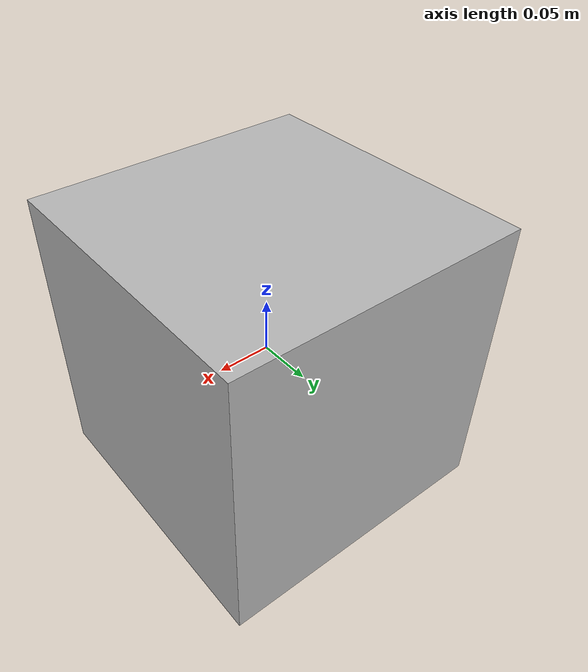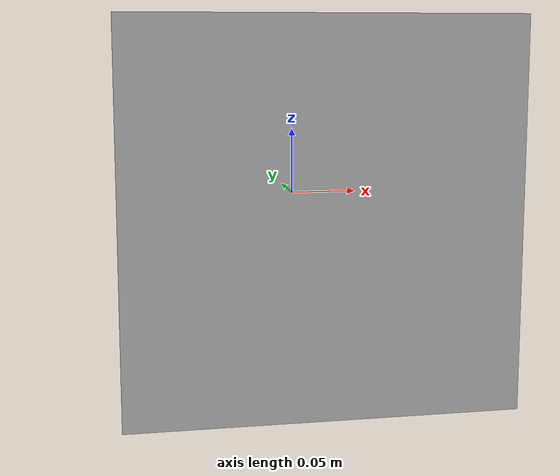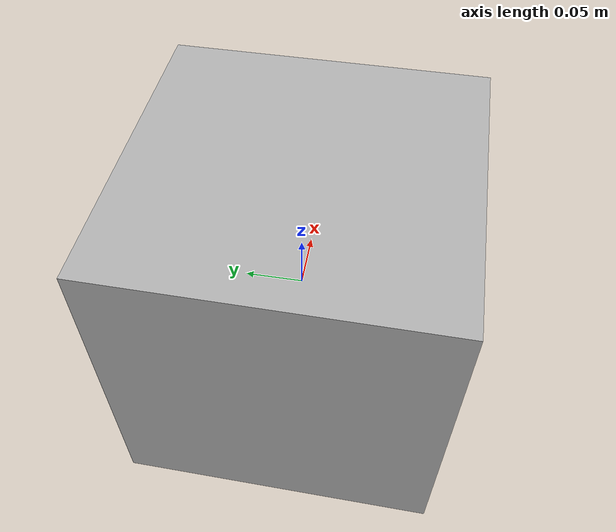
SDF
<?xml version="1.0" ?>
<sdf version="1.6">
  <model name="creeper_200">
    <static>true</static>
    <link name="box">
      <pose>0 0 0 0 0 0</pose>
      <collision name="collision">
        <geometry>
          <box>
           <size>0.27 0.27 0.27</size>
          </box>
        </geometry>
      </collision>
      <visual name="visual">
        <geometry>
          <box>
            <size>0.27 0.27 0.27</size>
          </box>
        </geometry>
        <material>
          <script>
            <uri>model://pista_s/creepers/creeper_200/materials/scripts</uri>
            <uri>model://pista_s/creepers/creeper_200/materials/textures</uri>
            <name>caixa</name>
          </script>
        </material>
      </visual>
    </link>
  </model>
</sdf>
